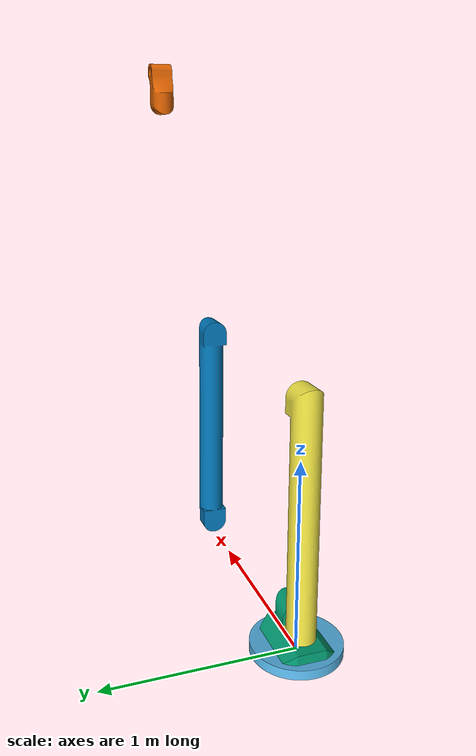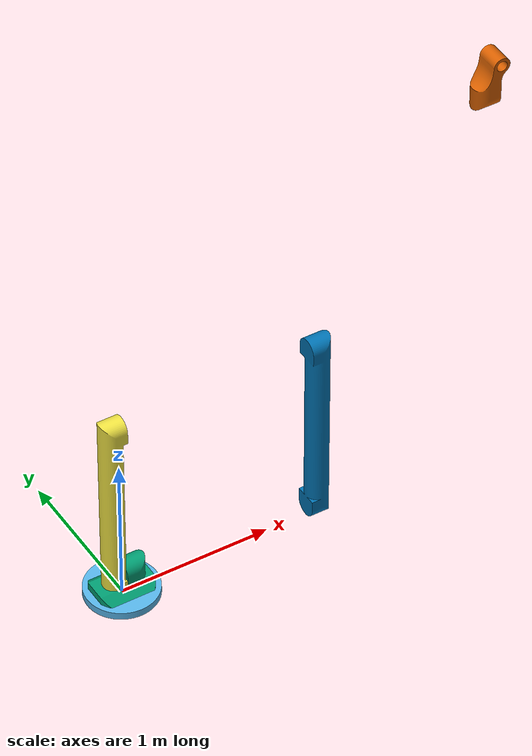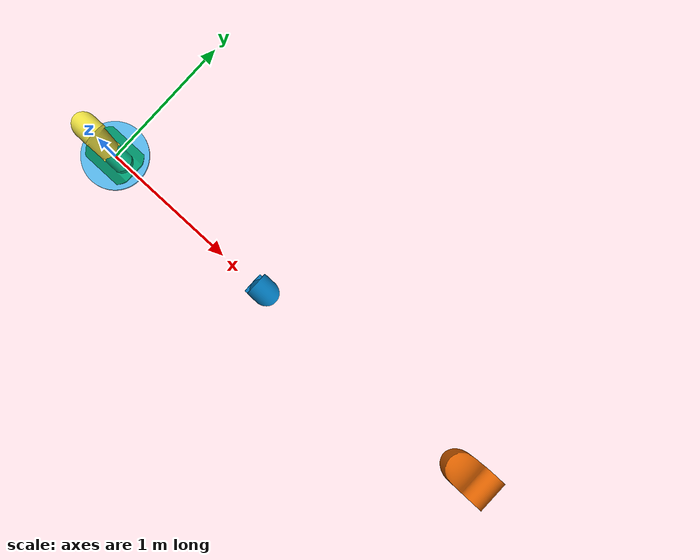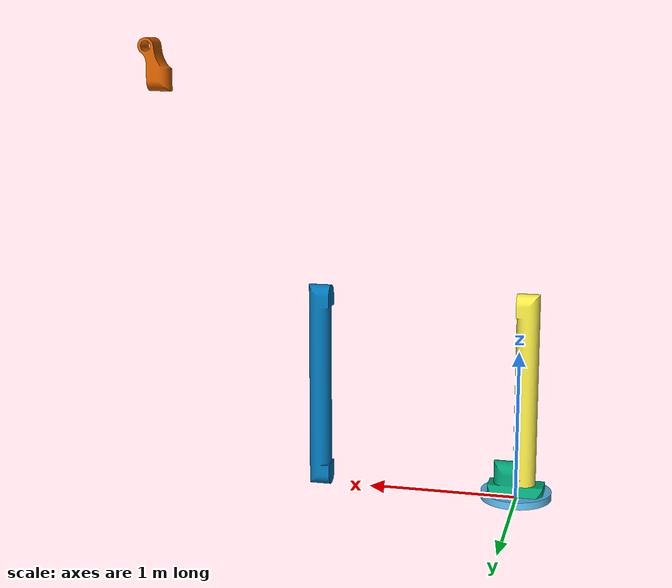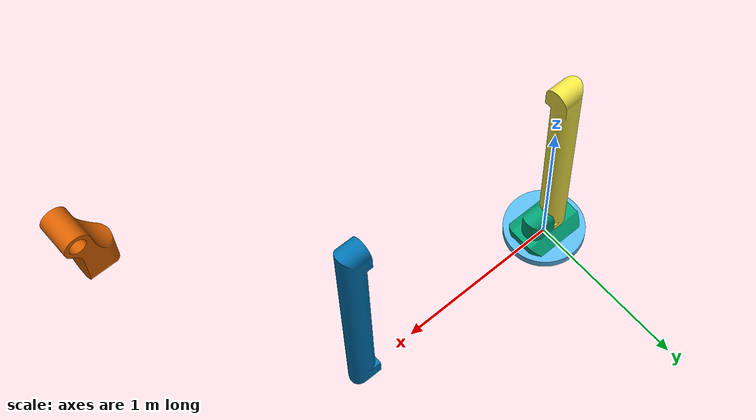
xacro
<?xml version="1.0"?>
<robot xmlns:xacro="http://www.ros.org/wiki/xacro" name="e3d_bot">

    <!-- Useful XACRO Variables (Properties) -->
    <xacro:property name="PI" value="3.14159265359" />
    <xacro:property name="effort" value="30.0" />
    <xacro:property name="velocity" value="10.0" />

    <!-- Useful Macros -->
    <xacro:macro name="default_inertial" params="mass ixx iyy izz ixy iyz ixz xyz rpy">
        <inertial>
            <origin xyz="${xyz}" rpy="${rpy}"/>
            <mass value="${mass}" />
            <inertia ixx="${ixx}" ixy="${ixy}" ixz="${ixz}"
                     iyy="${iyy}" iyz="${iyz}"
                     izz="${izz}" />
        </inertial>
    </xacro:macro>
    <xacro:macro name="default_transmission" params="number joint">
        <transmission name="transmission_${number}">
            <type>transmission_interface/SimpleTransmission</type>
            <actuator name="motor_${number}">
                <mechanicalReduction>1.0</mechanicalReduction>
            </actuator>
            <joint name="${joint}">
                <hardwareInterface>PositionJointInterface</hardwareInterface>
            </joint>
        </transmission>
    </xacro:macro>

    <link name="world"/>

    <!-- Links -->
    <link name="base_link">
        <xacro:default_inertial mass="68.09657331058979" ixx="0.954345" iyy="0.954345" izz="1.880317" ixy="0.0" iyz="0.0" ixz="0.0" xyz="1.0065046946341601e-16 3.355015648780533e-17 0.025000000000000005" rpy="0 0 0"/>
        <visual>
            <origin xyz="0 0 0" rpy="0 0 0"/>
            <geometry>
                <mesh filename="package://e3d_bot_description/meshes/base_link.stl" scale="0.001 0.001 0.001"/>
            </geometry>
        </visual>
        <collision>
            <origin xyz="0 0 0" rpy="0 0 0"/>
            <geometry>
                <mesh filename="package://e3d_bot_description/meshes/base_link.stl" scale="0.001 0.001 0.001"/>
            </geometry>
        </collision>
    </link>

    <link name="turnTable_1">
        <xacro:default_inertial mass="95.92340611318656" ixx="0.876124" iyy="1.240281" izz="1.409951" ixy="-0.0" iyz="-0.0" ixz="-0.144355" xyz="0.015394292608733942 -6.217248937900877e-17 0.07182246463634923" rpy="0 0 0"/>
        <visual>
            <origin xyz="-0.0 -0.0 -0.05" rpy="0 0 0"/>
            <geometry>
                <mesh filename="package://e3d_bot_description/meshes/turnTable_1.stl" scale="0.001 0.001 0.001"/>
            </geometry>
        </visual>
        <collision>
            <origin xyz="-0.0 -0.0 -0.05" rpy="0 0 0"/>
            <geometry>
                <mesh filename="package://e3d_bot_description/meshes/turnTable_1.stl" scale="0.001 0.001 0.001"/>
            </geometry>
        </collision>
    </link>

    <link name="l1_1">
        <xacro:default_inertial mass="195.479313262593" ixx="32.16085" iyy="32.168685" izz="0.565071" ixy="-0.0" iyz="-0.0" ixz="0.0" xyz="-0.0736539542138444 1.5987211554602254e-16 0.6249999999999996" rpy="0 0 0"/>
        <visual>
            <origin xyz="-0.0 0.0 -0.225" rpy="0 0 0"/>
            <geometry>
                <mesh filename="package://e3d_bot_description/meshes/l1_1.stl" scale="0.001 0.001 0.001"/>
            </geometry>
        </visual>
        <collision>
            <origin xyz="-0.0 0.0 -0.225" rpy="0 0 0"/>
            <geometry>
                <mesh filename="package://e3d_bot_description/meshes/l1_1.stl" scale="0.001 0.001 0.001"/>
            </geometry>
        </collision>
    </link>

    <link name="l2_1">
        <xacro:default_inertial mass="195.47931326259283" ixx="32.16085" iyy="32.168685" izz="0.565071" ixy="-0.0" iyz="-0.0" ixz="0.0" xyz="0.0736539542138442 5.062616992290713e-16 0.6250000000000009" rpy="0 0 0"/>
        <visual>
            <origin xyz="0.0 -0.0 -1.475" rpy="0 0 0"/>
            <geometry>
                <mesh filename="package://e3d_bot_description/meshes/l2_1.stl" scale="0.001 0.001 0.001"/>
            </geometry>
        </visual>
        <collision>
            <origin xyz="0.0 -0.0 -1.475" rpy="0 0 0"/>
            <geometry>
                <mesh filename="package://e3d_bot_description/meshes/l2_1.stl" scale="0.001 0.001 0.001"/>
            </geometry>
        </collision>
    </link>

    <link name="endeffector_1">
        <xacro:default_inertial mass="19.866958425522623" ixx="0.014941" iyy="0.014941" izz="0.000257" ixy="0.0" iyz="0.0" ixz="0.0" xyz="4.9737991503207015e-17 -1.8109558859999948e-17 -0.175" rpy="0 0 0"/>
        <visual>
            <origin xyz="0 0 -0.05" rpy="0 0 0"/>
            <geometry>
                <mesh filename="package://e3d_bot_description/meshes/endeffector_1.stl" scale="0.001 0.001 0.001"/>
            </geometry>
        </visual>
        <collision>
            <origin xyz="0 0 -0.05" rpy="0 0 0"/>
            <geometry>
                <mesh filename="package://e3d_bot_description/meshes/endeffector_1.stl" scale="0.001 0.001 0.001"/>
            </geometry>
        </collision>
    </link>

    <!-- Joints -->
    <joint name="virtual_joint" type="fixed">
        <parent link="world"/>
        <child link="base_link"/>
        <origin xyz="0 0 0" rpy="0 0 0"/>
    </joint>

    <joint name="turnTable_to_base" type="revolute">
        <origin xyz="0 0 0" rpy="0 0 0"/>
        <parent link="base_link"/>
        <child link="turnTable_1"/>
        <axis xyz="0 0 1"/>
        <limit lower="${-PI/2}" upper="${PI/2}" effort="${effort}" velocity="${velocity}"/>
    </joint>

    <joint name="l1_to_base" type="revolute">
        <origin xyz="0.0225 0 0.07" rpy="0 0 0"/>
        <parent link="base_link"/>
        <child link="l1_1"/>
        <axis xyz="0 1 0"/>
        <limit lower="${-PI/2}" upper="${PI/2}" effort="${effort}" velocity="${velocity}"/>
    </joint>

    <joint name="l2_to_l1" type="revolute">
        <origin xyz="1.25 0 0" rpy="0 0 0"/>
        <parent link="l1_1"/>
        <child link="l2_1"/>
        <axis xyz="0 1 0"/>
        <limit lower="${-PI/2}" upper="${PI/2}" effort="${effort}" velocity="${velocity}"/>
    </joint>

    <joint name="endeffector_to_l2" type="fixed">
        <origin xyz="1.25 0 0" rpy="0 0 0"/>
        <parent link="l2_1"/>
        <child link="endeffector_1"/>
        <axis xyz="-1.0 0.0 0.0"/>
    </joint>

    <!-- Transmissions -->
    <xacro:default_transmission number="1" joint="turnTable_to_base"/>
    <xacro:default_transmission number="2" joint="l1_to_base"/>
    <xacro:default_transmission number="3" joint="l2_to_l1"/>
    <xacro:default_transmission number="4" joint="endeffector_to_l2"/>

</robot>
